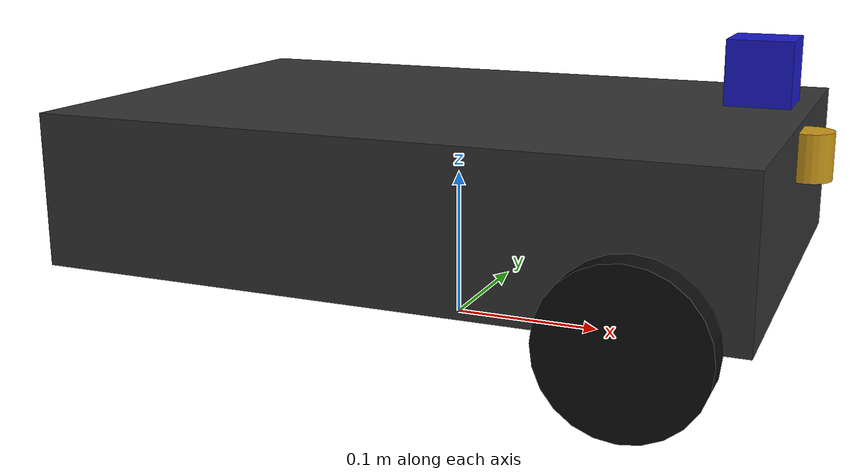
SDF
<?xml version="1.0" ?>
<sdf version="1.7">
  <model name="patrol_robot">
    <static>false</static>

    <!-- Base -->
    <link name="base_link">
      <pose>0 0 0.1 0 0 0</pose>
      <inertial>
        <mass>8.0</mass>
        <inertia>
          <ixx>0.12</ixx>
          <ixy>0.0</ixy>
          <ixz>0.0</ixz>
          <iyy>0.10</iyy>
          <iyz>0.0</iyz>
          <izz>0.18</izz>
        </inertia>
      </inertial>
      <collision name="base_collision">
        <geometry>
          <box>
            <size>0.45 0.30 0.10</size>
          </box>
        </geometry>
      </collision>
      <visual name="base_visual">
        <geometry>
          <box>
            <size>0.45 0.30 0.10</size>
          </box>
        </geometry>
        <material>
          <ambient>0.2 0.2 0.2 1</ambient>
          <diffuse>0.2 0.2 0.2 1</diffuse>
        </material>
      </visual>
    </link>

    <!-- Left wheel -->
    <link name="left_wheel_link">
      <pose>0.16 0.16 0.05 0 0 0</pose>
      <inertial>
        <mass>0.5</mass>
        <inertia>
          <ixx>0.001</ixx>
          <ixy>0.0</ixy>
          <ixz>0.0</ixz>
          <iyy>0.001</iyy>
          <iyz>0.0</iyz>
          <izz>0.001</izz>
        </inertia>
      </inertial>
      <collision name="left_wheel_collision">
        <pose>0 0 0 1.57079632679 0 0</pose>
        <geometry>
          <cylinder>
            <radius>0.05</radius>
            <length>0.02</length>
          </cylinder>
        </geometry>
        <surface>
          <friction>
            <ode>
              <mu>1.0</mu>
              <mu2>1.0</mu2>
            </ode>
          </friction>
        </surface>
      </collision>
      <visual name="left_wheel_visual">
        <pose>0 0 0 1.57079632679 0 0</pose>
        <geometry>
          <cylinder>
            <radius>0.05</radius>
            <length>0.02</length>
          </cylinder>
        </geometry>
        <material>
          <ambient>0.05 0.05 0.05 1</ambient>
          <diffuse>0.05 0.05 0.05 1</diffuse>
        </material>
      </visual>
    </link>

    <joint name="left_wheel_joint" type="revolute">
      <parent>base_link</parent>
      <child>left_wheel_link</child>
      <axis>
        <xyz>0 1 0</xyz>
        <limit>
          <lower>-1e16</lower>
          <upper>1e16</upper>
        </limit>
      </axis>
    </joint>

    <!-- Right wheel -->
    <link name="right_wheel_link">
      <pose>0.16 -0.16 0.05 0 0 0</pose>
      <inertial>
        <mass>0.5</mass>
        <inertia>
          <ixx>0.001</ixx>
          <ixy>0.0</ixy>
          <ixz>0.0</ixz>
          <iyy>0.001</iyy>
          <iyz>0.0</iyz>
          <izz>0.001</izz>
        </inertia>
      </inertial>
      <collision name="right_wheel_collision">
        <pose>0 0 0 1.57079632679 0 0</pose>
        <geometry>
          <cylinder>
            <radius>0.05</radius>
            <length>0.02</length>
          </cylinder>
        </geometry>
        <surface>
          <friction>
            <ode>
              <mu>1.0</mu>
              <mu2>1.0</mu2>
            </ode>
          </friction>
        </surface>
      </collision>
      <visual name="right_wheel_visual">
        <pose>0 0 0 1.57079632679 0 0</pose>
        <geometry>
          <cylinder>
            <radius>0.05</radius>
            <length>0.02</length>
          </cylinder>
        </geometry>
        <material>
          <ambient>0.05 0.05 0.05 1</ambient>
          <diffuse>0.05 0.05 0.05 1</diffuse>
        </material>
      </visual>
    </link>

    <joint name="right_wheel_joint" type="revolute">
      <parent>base_link</parent>
      <child>right_wheel_link</child>
      <axis>
        <xyz>0 1 0</xyz>
        <limit>
          <lower>-1e16</lower>
          <upper>1e16</upper>
        </limit>
      </axis>
    </joint>

    <!-- Caster (omni) wheel -->
    <link name="caster_wheel_link">
      <pose>-0.20 0 0.04 0 0 0</pose>
      <inertial>
        <mass>0.2</mass>
        <inertia>
          <ixx>0.0002</ixx>
          <ixy>0.0</ixy>
          <ixz>0.0</ixz>
          <iyy>0.0002</iyy>
          <iyz>0.0</iyz>
          <izz>0.0002</izz>
        </inertia>
      </inertial>
      <collision name="caster_wheel_collision">
        <geometry>
          <sphere>
            <radius>0.04</radius>
          </sphere>
        </geometry>
        <surface>
          <friction>
            <ode>
              <mu>0.2</mu>
              <mu2>0.2</mu2>
            </ode>
          </friction>
        </surface>
      </collision>
      <visual name="caster_wheel_visual">
        <geometry>
          <sphere>
            <radius>0.04</radius>
          </sphere>
        </geometry>
        <material>
          <ambient>0.3 0.3 0.3 1</ambient>
          <diffuse>0.3 0.3 0.3 1</diffuse>
        </material>
      </visual>
    </link>

    <joint name="caster_wheel_joint" type="ball">
      <parent>base_link</parent>
      <child>caster_wheel_link</child>
    </joint>

    <!-- Camera -->
    <link name="camera_link">
      <pose>0.20 0 0.18 0 0 0</pose>
      <inertial>
        <mass>0.05</mass>
        <inertia>
          <ixx>0.00001</ixx>
          <ixy>0.0</ixy>
          <ixz>0.0</ixz>
          <iyy>0.00001</iyy>
          <iyz>0.0</iyz>
          <izz>0.00001</izz>
        </inertia>
      </inertial>
      <collision name="camera_collision">
        <geometry>
          <box>
            <size>0.04 0.04 0.04</size>
          </box>
        </geometry>
      </collision>
      <visual name="camera_visual">
        <geometry>
          <box>
            <size>0.04 0.04 0.04</size>
          </box>
        </geometry>
        <material>
          <ambient>0.1 0.1 0.8 1</ambient>
          <diffuse>0.1 0.1 0.8 1</diffuse>
        </material>
      </visual>

      <sensor name="front_camera_sensor" type="camera">
        <pose>0 0 0 0 0 0</pose>
        <always_on>true</always_on>
        <update_rate>10</update_rate>
        <visualize>true</visualize>
        <camera>
          <horizontal_fov>1.047</horizontal_fov>
          <image>
            <width>640</width>
            <height>480</height>
            <format>R8G8B8</format>
          </image>
          <clip>
            <near>0.1</near>
            <far>10.0</far>
          </clip>
        </camera>
        <plugin name="front_camera_plugin" filename="libgazebo_ros_camera.so">
          <ros>
            <namespace>/patrol_robot</namespace>
          </ros>
          <camera_name>front_camera</camera_name>
          <image_topic_name>front_camera/image_raw</image_topic_name>
          <camera_info_topic_name>front_camera/camera_info</camera_info_topic_name>
          <frame_name>camera_link</frame_name>
        </plugin>
      </sensor>
    </link>

    <joint name="camera_joint" type="fixed">
      <parent>base_link</parent>
      <child>camera_link</child>
    </joint>

    <!-- Ultrasonic range sensor -->
    <link name="ultrasonic_link">
      <pose>0.23 0 0.13 0 0 0</pose>
      <inertial>
        <mass>0.05</mass>
        <inertia>
          <ixx>0.00001</ixx>
          <ixy>0.0</ixy>
          <ixz>0.0</ixz>
          <iyy>0.00001</iyy>
          <iyz>0.0</iyz>
          <izz>0.00001</izz>
        </inertia>
      </inertial>
      <collision name="ultrasonic_collision">
        <geometry>
          <cylinder>
            <radius>0.015</radius>
            <length>0.03</length>
          </cylinder>
        </geometry>
      </collision>
      <visual name="ultrasonic_visual">
        <geometry>
          <cylinder>
            <radius>0.015</radius>
            <length>0.03</length>
          </cylinder>
        </geometry>
        <material>
          <ambient>0.8 0.6 0.1 1</ambient>
          <diffuse>0.8 0.6 0.1 1</diffuse>
        </material>
      </visual>

      <sensor name="ultrasonic_sensor" type="ray">
        <pose>0 0 0 0 0 0</pose>
        <always_on>true</always_on>
        <!-- Keep scan rate modest to avoid message-filter queue overflow on slower machines -->
        <update_rate>10</update_rate>
        <!-- Set to false if Gazebo GUI is slow on your VM -->
        <visualize>true</visualize>
        <ray>
          <scan>
            <horizontal>
              <samples>360</samples>
              <resolution>1</resolution>
              <min_angle>-1.570796</min_angle>
              <max_angle>1.570796</max_angle>
            </horizontal>
          </scan>
          <range>
            <min>0.02</min>
            <max>8.0</max>
            <resolution>0.01</resolution>
          </range>
        </ray>
        <plugin name="ultrasonic_plugin" filename="libgazebo_ros_ray_sensor.so">
          <ros>
            <namespace>/patrol_robot</namespace>
            <remapping>~/out:=ultrasonic/scan</remapping>
          </ros>
          <output_type>sensor_msgs/LaserScan</output_type>
          <frame_name>ultrasonic_link</frame_name>
        </plugin>
      </sensor>
    </link>

    <joint name="ultrasonic_joint" type="fixed">
      <parent>base_link</parent>
      <child>ultrasonic_link</child>
    </joint>

    <!-- Publish wheel joint states for RViz / robot_state_publisher -->
    <plugin name="joint_state_publisher_plugin" filename="libgazebo_ros_joint_state_publisher.so">
      <!-- Use global namespace so the default output is /joint_states -->
      <ros>
        <namespace>/</namespace>
      </ros>
      <update_rate>20</update_rate>
      <joint_name>left_wheel_joint</joint_name>
      <joint_name>right_wheel_joint</joint_name>
    </plugin>

    <!-- Differential drive controller -->
    <plugin name="diff_drive_plugin" filename="libgazebo_ros_diff_drive.so">
      <ros>
        <namespace>/patrol_robot</namespace>
      </ros>
      <update_rate>20</update_rate>
      <left_joint>left_wheel_joint</left_joint>
      <right_joint>right_wheel_joint</right_joint>
      <wheel_separation>0.32</wheel_separation>
      <wheel_diameter>0.10</wheel_diameter>
      <max_wheel_torque>20.0</max_wheel_torque>
      <max_wheel_acceleration>10.0</max_wheel_acceleration>
      <odometry_frame>odom</odometry_frame>
      <robot_base_frame>base_link</robot_base_frame>
      <publish_odom>true</publish_odom>
      <publish_odom_tf>true</publish_odom_tf>
      <publish_wheel_tf>false</publish_wheel_tf>
      <command_topic>cmd_vel</command_topic>
      <odometry_topic>odom</odometry_topic>
    </plugin>
  </model>
</sdf>
